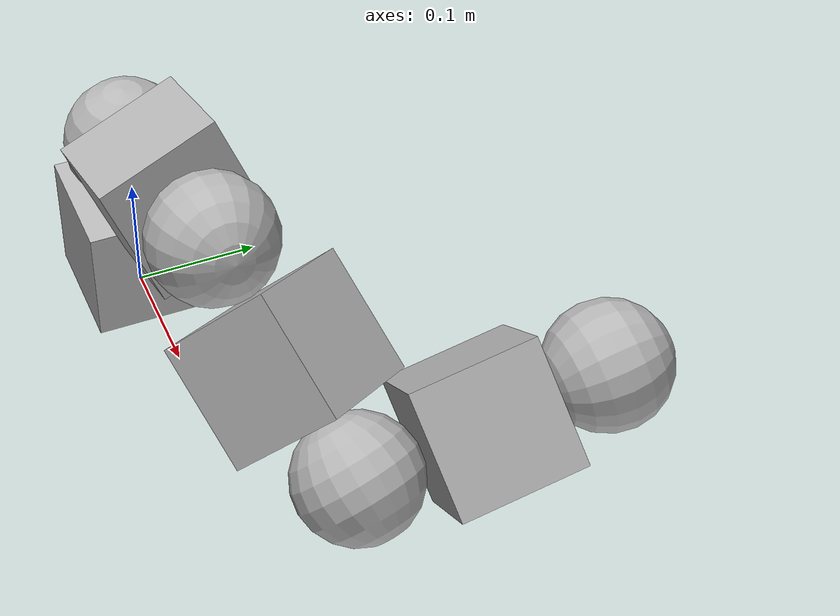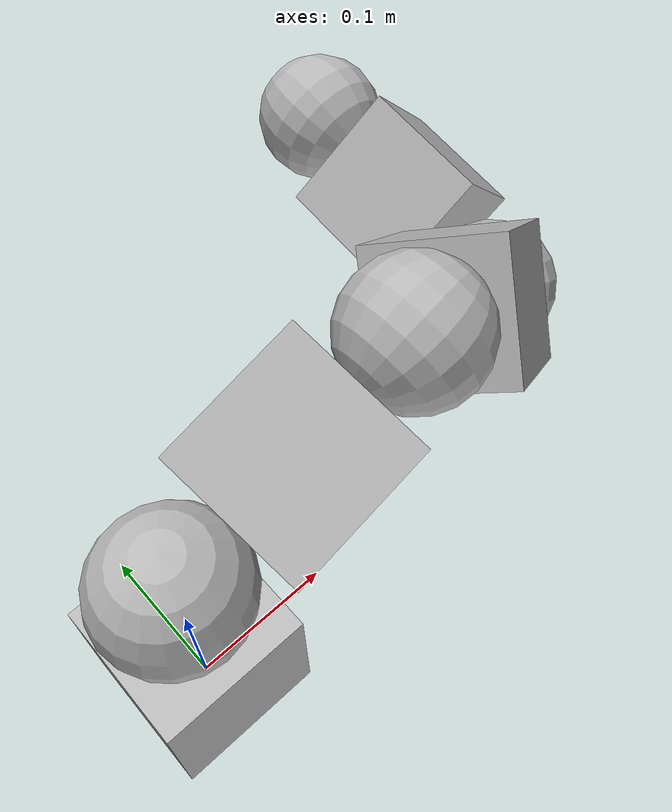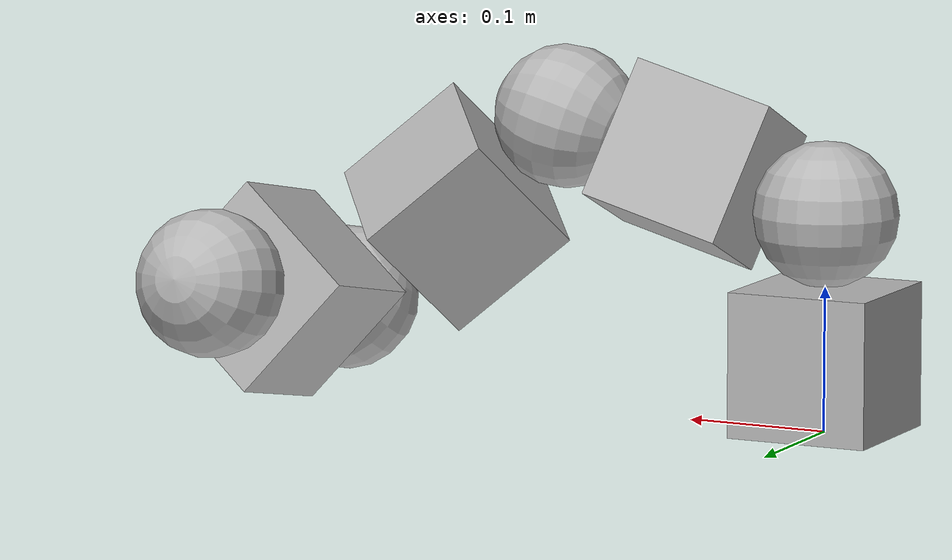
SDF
<?xml version="1.0" ?>
    <sdf version="1.7">
        <model name="chain_n=4">

            <joint name="joint_n_0" type="ball">
                <parent>link0</parent>
                <child>sphere0</child>
                <pose>0 0 0 0 0 0</pose>
            </joint>

    <link name="link0">
        <pose>0.0 0.0 0.0 0.0 -0.0 0.0</pose>
        <inertial>
            <pose>0 0 0.05 0 0 0</pose>
            <mass>0.1</mass>
            <inertia>
            <ixx>0.1</ixx><ixy>0.0</ixy><ixz>0.0</ixz>
                            <iyy>0.1</iyy><iyz>0.0</iyz>
                                        <izz>0.01</izz>
            </inertia>
        </inertial>
        <visual name="visual_box0">
            <pose>0 0 0.05 0 0 0</pose>
            <geometry>
            <box>
                <size>0.1 0.1 0.1</size>
            </box>
            </geometry>
        </visual>
        <collision name="collision_box0">
            <pose>0 0 0.05 0 0 0</pose>
            <geometry>
            <box>
                <size>0.1 0.1 0.1</size>
            </box>
            </geometry>
            <drake:proximity_properties>
                <drake:compliant_hydroelastic/>
                <drake:hydroelastic_modulus>1.0e8</drake:hydroelastic_modulus>
            </drake:proximity_properties>
        </collision>
    </link>

    <link name="sphere0">
        <pose>0.0 0.0 0.15000000000000002 0.0 -0.0 0.0</pose>
        <inertial>
            <mass>0.1</mass>
        </inertial>
        <visual name="visual_sphere0">
            <geometry>
            <sphere>
                <radius>0.05</radius>
            </sphere>
            </geometry>
        </visual>
        <collision name="collision_sphere0">
            <geometry>
            <sphere>
                <radius>0.05</radius>
            </sphere>
            </geometry>

            <drake:proximity_properties>
                <drake:compliant_hydroelastic/>
                <drake:mesh_resolution_hint>0.1</drake:mesh_resolution_hint>
                <drake:hydroelastic_modulus>5e7</drake:hydroelastic_modulus>
                <drake:hunt_crossley_dissipation>1.25</drake:hunt_crossley_dissipation>
            </drake:proximity_properties>

        </collision>
    </link>

                <joint name="joint_p_1" type="ball">
                    <parent>sphere0</parent>
                    <child>link1</child>
                    <pose>0 0 -0.05 0 0 0</pose>
                </joint>

            <joint name="joint_n_1" type="ball">
                <parent>link1</parent>
                <child>sphere1</child>
                <pose>0 0 0 0 0 0</pose>
            </joint>

    <link name="link1">
        <pose>0.047949287224397265 0.0016328947014036422 0.16407833475828662 0.8620742360644782 1.123416829660566 0.9468184970598288</pose>
        <inertial>
            <pose>0 0 0.05 0 0 0</pose>
            <mass>0.1</mass>
            <inertia>
            <ixx>0.1</ixx><ixy>0.0</ixy><ixz>0.0</ixz>
                            <iyy>0.1</iyy><iyz>0.0</iyz>
                                        <izz>0.01</izz>
            </inertia>
        </inertial>
        <visual name="visual_box1">
            <pose>0 0 0.05 0 0 0</pose>
            <geometry>
            <box>
                <size>0.1 0.1 0.1</size>
            </box>
            </geometry>
        </visual>
        <collision name="collision_box1">
            <pose>0 0 0.05 0 0 0</pose>
            <geometry>
            <box>
                <size>0.1 0.1 0.1</size>
            </box>
            </geometry>
            <drake:proximity_properties>
                <drake:compliant_hydroelastic/>
                <drake:hydroelastic_modulus>1.0e8</drake:hydroelastic_modulus>
            </drake:proximity_properties>
        </collision>
    </link>

    <link name="sphere1">
        <pose>0.19179714889758906 0.006531578805614569 0.20631333903314644 0.8620742360644782 1.123416829660566 0.9468184970598288</pose>
        <inertial>
            <mass>0.1</mass>
        </inertial>
        <visual name="visual_sphere1">
            <geometry>
            <sphere>
                <radius>0.05</radius>
            </sphere>
            </geometry>
        </visual>
        <collision name="collision_sphere1">
            <geometry>
            <sphere>
                <radius>0.05</radius>
            </sphere>
            </geometry>

            <drake:proximity_properties>
                <drake:compliant_hydroelastic/>
                <drake:mesh_resolution_hint>0.1</drake:mesh_resolution_hint>
                <drake:hydroelastic_modulus>5e7</drake:hydroelastic_modulus>
                <drake:hunt_crossley_dissipation>1.25</drake:hunt_crossley_dissipation>
            </drake:proximity_properties>

        </collision>
    </link>

                <joint name="joint_p_2" type="ball">
                    <parent>sphere1</parent>
                    <child>link2</child>
                    <pose>0 0 -0.05 0 0 0</pose>
                </joint>

            <joint name="joint_n_2" type="ball">
                <parent>link2</parent>
                <child>sphere2</child>
                <pose>0 0 0 0 0 0</pose>
            </joint>

    <link name="link2">
        <pose>0.22768115363930522 0.01981053258943618 0.17412626724797745 2.3208319509494126 0.335133181684621 2.222557694732438</pose>
        <inertial>
            <pose>0 0 0.05 0 0 0</pose>
            <mass>0.1</mass>
            <inertia>
            <ixx>0.1</ixx><ixy>0.0</ixy><ixz>0.0</ixz>
                            <iyy>0.1</iyy><iyz>0.0</iyz>
                                        <izz>0.01</izz>
            </inertia>
        </inertial>
        <visual name="visual_box2">
            <pose>0 0 0.05 0 0 0</pose>
            <geometry>
            <box>
                <size>0.1 0.1 0.1</size>
            </box>
            </geometry>
        </visual>
        <collision name="collision_box2">
            <pose>0 0 0.05 0 0 0</pose>
            <geometry>
            <box>
                <size>0.1 0.1 0.1</size>
            </box>
            </geometry>
            <drake:proximity_properties>
                <drake:compliant_hydroelastic/>
                <drake:hydroelastic_modulus>1.0e8</drake:hydroelastic_modulus>
            </drake:proximity_properties>
        </collision>
    </link>

    <link name="sphere2">
        <pose>0.3353331678644537 0.05964739394090101 0.07756505189247048 2.3208319509494126 0.335133181684621 2.222557694732438</pose>
        <inertial>
            <mass>0.1</mass>
        </inertial>
        <visual name="visual_sphere2">
            <geometry>
            <sphere>
                <radius>0.05</radius>
            </sphere>
            </geometry>
        </visual>
        <collision name="collision_sphere2">
            <geometry>
            <sphere>
                <radius>0.05</radius>
            </sphere>
            </geometry>

            <drake:proximity_properties>
                <drake:compliant_hydroelastic/>
                <drake:mesh_resolution_hint>0.1</drake:mesh_resolution_hint>
                <drake:hydroelastic_modulus>5e7</drake:hydroelastic_modulus>
                <drake:hunt_crossley_dissipation>1.25</drake:hunt_crossley_dissipation>
            </drake:proximity_properties>

        </collision>
    </link>

                <joint name="joint_p_3" type="ball">
                    <parent>sphere2</parent>
                    <child>link3</child>
                    <pose>0 0 -0.05 0 0 0</pose>
                </joint>

            <joint name="joint_n_3" type="ball">
                <parent>link3</parent>
                <child>sphere3</child>
                <pose>0 0 0 0 0 0</pose>
            </joint>

    <link name="link3">
        <pose>0.3349778829866034 0.10869938770509202 0.08724883629802906 1.2746766261997409 -0.8450384884884753 -2.9099858083750036</pose>
        <inertial>
            <pose>0 0 0.05 0 0 0</pose>
            <mass>0.1</mass>
            <inertia>
            <ixx>0.1</ixx><ixy>0.0</ixy><ixz>0.0</ixz>
                            <iyy>0.1</iyy><iyz>0.0</iyz>
                                        <izz>0.01</izz>
            </inertia>
        </inertial>
        <visual name="visual_box3">
            <pose>0 0 0.05 0 0 0</pose>
            <geometry>
            <box>
                <size>0.1 0.1 0.1</size>
            </box>
            </geometry>
        </visual>
        <collision name="collision_box3">
            <pose>0 0 0.05 0 0 0</pose>
            <geometry>
            <box>
                <size>0.1 0.1 0.1</size>
            </box>
            </geometry>
            <drake:proximity_properties>
                <drake:compliant_hydroelastic/>
                <drake:hydroelastic_modulus>1.0e8</drake:hydroelastic_modulus>
            </drake:proximity_properties>
        </collision>
    </link>

    <link name="sphere3">
        <pose>0.3339120283530525 0.25585536899766503 0.11630018951470478 1.2746766261997409 -0.8450384884884753 -2.9099858083750036</pose>
        <inertial>
            <mass>0.1</mass>
        </inertial>
        <visual name="visual_sphere3">
            <geometry>
            <sphere>
                <radius>0.05</radius>
            </sphere>
            </geometry>
        </visual>
        <collision name="collision_sphere3">
            <geometry>
            <sphere>
                <radius>0.05</radius>
            </sphere>
            </geometry>

            <drake:proximity_properties>
                <drake:compliant_hydroelastic/>
                <drake:mesh_resolution_hint>0.1</drake:mesh_resolution_hint>
                <drake:hydroelastic_modulus>5e7</drake:hydroelastic_modulus>
                <drake:hunt_crossley_dissipation>1.25</drake:hunt_crossley_dissipation>
            </drake:proximity_properties>

        </collision>
    </link>

        </model>
    </sdf>
